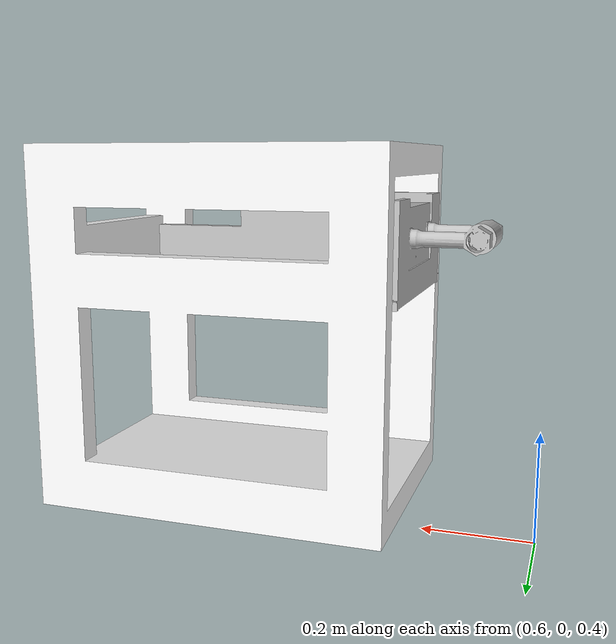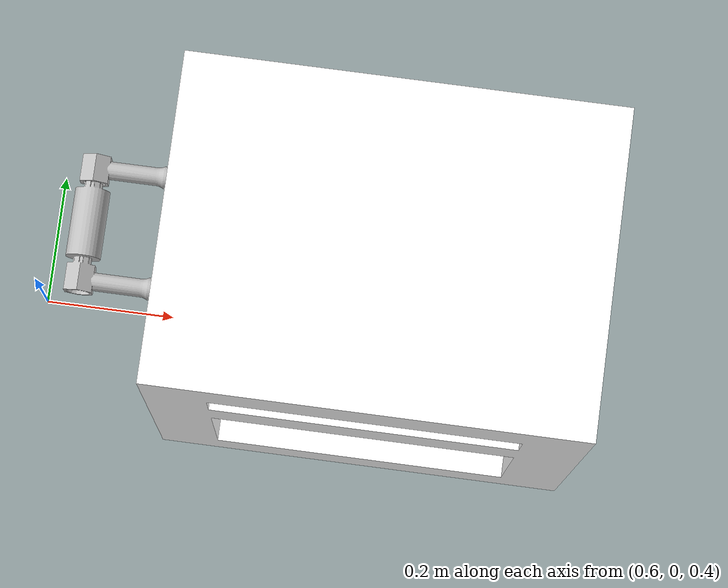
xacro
<?xml version="1.0"?>
<robot xmlns:xi="http://www.w3.org/2001/XInclude"
	xmlns:gazebo="http://playerstage.sourceforge.net/gazebo/xmlschema/#gz"
    xmlns:model="http://playerstage.sourceforge.net/gazebo/xmlschema/#model"
	xmlns:sensor="http://playerstage.sourceforge.net/gazebo/xmlschema/#sensor"
	xmlns:body="http://playerstage.sourceforge.net/gazebo/xmlschema/#body"
    xmlns:geom="http://playerstage.sourceforge.net/gazebo/xmlschema/#geom"
    xmlns:joint="http://playerstage.sourceforge.net/gazebo/xmlschema/#joint"
	xmlns:controller="http://playerstage.sourceforge.net/gazebo/xmlschema/#controller"
	xmlns:interface="http://playerstage.sourceforge.net/gazebo/xmlschema/#interface"
	xmlns:rendering="http://playerstage.sourceforge.net/gazebo/xmlschema/#rendering"
    xmlns:renderable="http://playerstage.sourceforge.net/gazebo/xmlschema/#renderable"
    xmlns:physics="http://playerstage.sourceforge.net/gazebo/xmlschema/#physics"
	xmlns:xacro="http://www.ros.org/wiki/xacro" name="drawer_model">
  <xacro:include filename="$(find kinova_description)/urdf/drawer.xacro"/>

  <link name="root" />

  <!-- for gazebo -->
  <link name="world"/>

  <drawer parent="world"/>
  <joint name="connect_root_and_world" type="fixed">
    <child link="root" />
    <parent link="world" />
    <origin xyz="-0.2 0 0" rpy="0 0 0" />
  </joint>
</robot>

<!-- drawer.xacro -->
<root xmlns:xi="http://www.w3.org/2001/XInclude"
	xmlns:gazebo="http://playerstage.sourceforge.net/gazebo/xmlschema/#gz"
    xmlns:model="http://playerstage.sourceforge.net/gazebo/xmlschema/#model"
	xmlns:sensor="http://playerstage.sourceforge.net/gazebo/xmlschema/#sensor"
	xmlns:body="http://playerstage.sourceforge.net/gazebo/xmlschema/#body"
    xmlns:geom="http://playerstage.sourceforge.net/gazebo/xmlschema/#geom"
    xmlns:joint="http://playerstage.sourceforge.net/gazebo/xmlschema/#joint"
	xmlns:controller="http://playerstage.sourceforge.net/gazebo/xmlschema/#controller"
	xmlns:interface="http://playerstage.sourceforge.net/gazebo/xmlschema/#interface"
	xmlns:rendering="http://playerstage.sourceforge.net/gazebo/xmlschema/#rendering"
    xmlns:renderable="http://playerstage.sourceforge.net/gazebo/xmlschema/#renderable"
    xmlns:physics="http://playerstage.sourceforge.net/gazebo/xmlschema/#physics"
	xmlns:xacro="http://www.ros.org/wiki/xacro">
  <xacro:include filename="$(find kinova_description)/urdf/drawer.gazebo" />
  <xacro:macro name="drawer" params="parent">

  <joint
    name="drawer_slider"
    type="prismatic">
    <origin
      xyz="-0.18053 -0.52596 0.15683"
      rpy="-1.5708 -1.5708 0" />
    <parent
      link="frame_link" />
    <child
      link="drawer_Link" />
    <axis
      xyz="1 0 0" />
    <limit
      lower="-0.2"
      upper="0"
      effort="1000.0"
      velocity="2.5" />
    <dynamics
      friction="0.01"
      />
  </joint>

  <link
    name="drawer_Link">
    <inertial>
      <mass
        value="3.0911" />
      <inertia
        ixx="0.0194"
        ixy="0"
        ixz="0"
        iyy="0"
        iyz="0"
        izz="0.024774" />
    </inertial>
    <visual>
      <origin
        xyz="0 0 0"
        rpy="0 0 0" />
      <geometry>
        <mesh
          filename="file://$(find kinova_description)/meshes/drawer_Link.STL" />
      </geometry>
      <material
        name="">
        <color
          rgba="0.75294 0.75294 0.75294 1" />
      </material>
    </visual>
    <collision>
      <origin
        xyz="0 0 0"
        rpy="0 0 0" />
      <geometry>
        <mesh
          filename="file://$(find kinova_description)/meshes/drawer_Link.STL" />
      </geometry>
    </collision>
  </link>

  <link
    name="frame_link">
    <inertial>
      <mass
        value="16.831" />
      <inertia
        ixx="0.33129"
        ixy="0"
        ixz="0"
        iyy="0.19577"
        iyz="0"
        izz="0.33426" />
    </inertial>
    <visual>
      <origin
        xyz="0 0 0"
        rpy="0 0 0" />
      <geometry>
        <mesh
          filename="file://$(find kinova_description)/meshes/frame_link.STL" scale="1 1 1"/>
      </geometry>
      <material
        name="brown">
        <color
          rgba="1 1 1 1" />
      </material>
    </visual>
    <collision>
      <origin
        xyz="0 0 0"
        rpy="0 0 0" />
      <geometry>
        <mesh
          filename="file://$(find kinova_description)/meshes/frame_link.STL" scale="1 1 1"/>
      </geometry>
    </collision>
  </link>

  <joint name="connect_drawer_to_parent" type="fixed">
    <child link="frame_link" />
    <parent link="${parent}"/>

    <origin xyz="0.5 0 1.2025" rpy="-1.5708 -3.1416 -1.5708" />
  </joint>

  <transmission name="tran1">
        <type>transmission_interface/SimpleTransmission</type>
        <joint name="drawer_slider">
          <hardwareInterface>hardware_interface/EffortJointInterface</hardwareInterface>
        </joint>
        <actuator name="motor1">
          <hardwareInterface>hardware_interface/EffortJointInterface</hardwareInterface>
          <mechanicalReduction>1</mechanicalReduction>
        </actuator>
   </transmission>

</xacro:macro>
</root>
